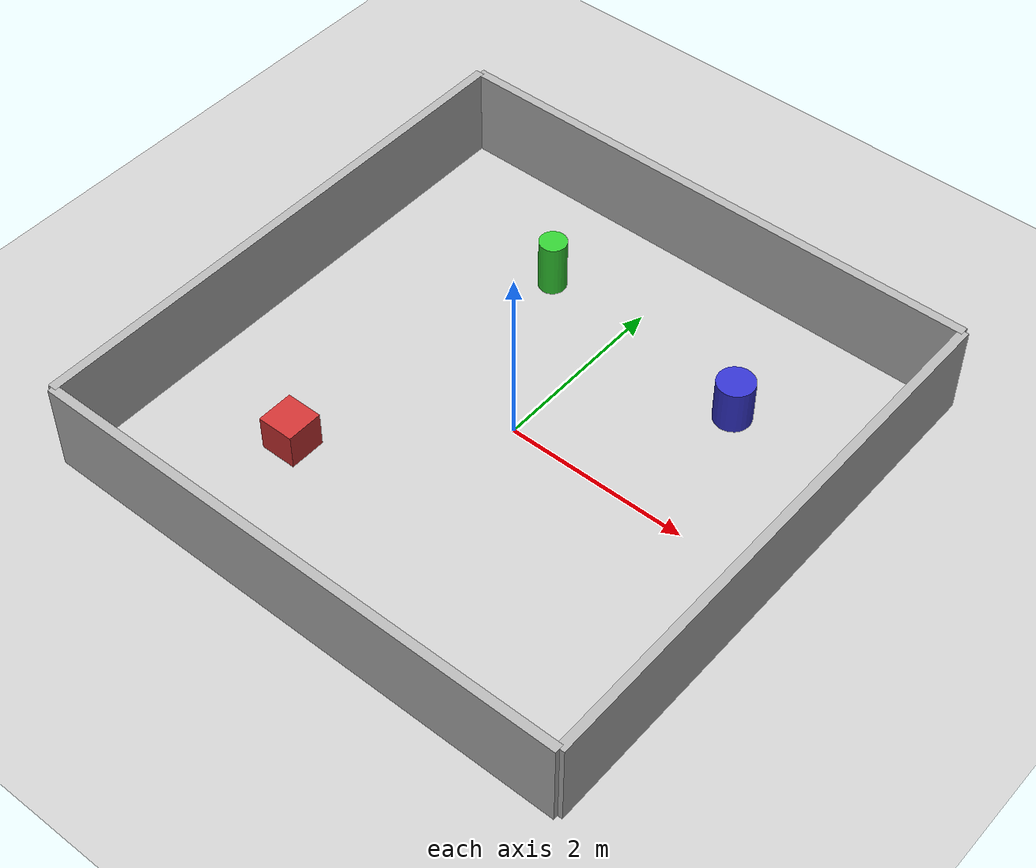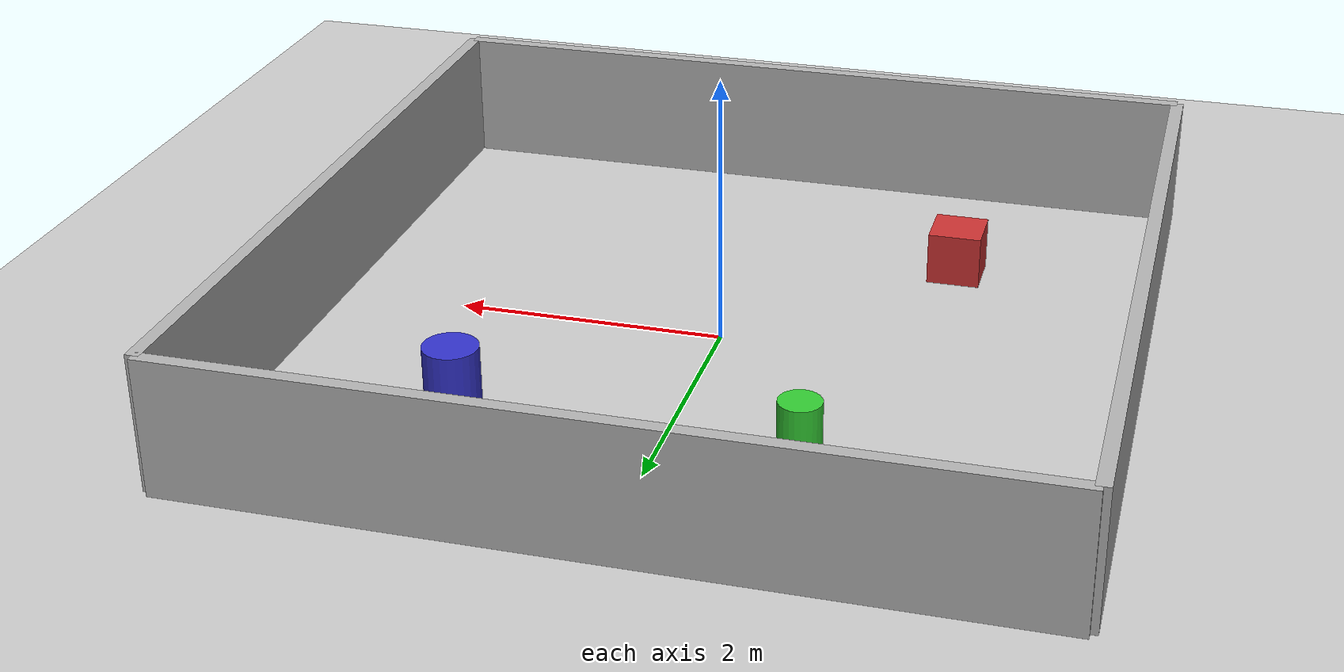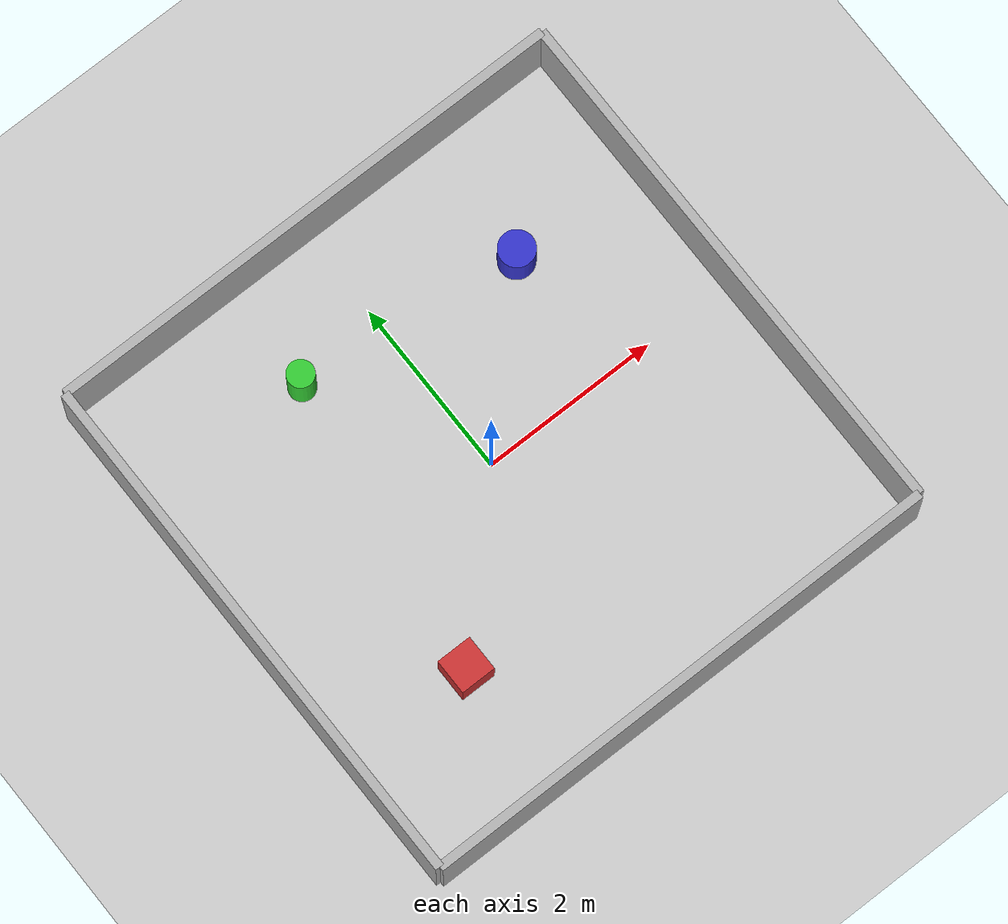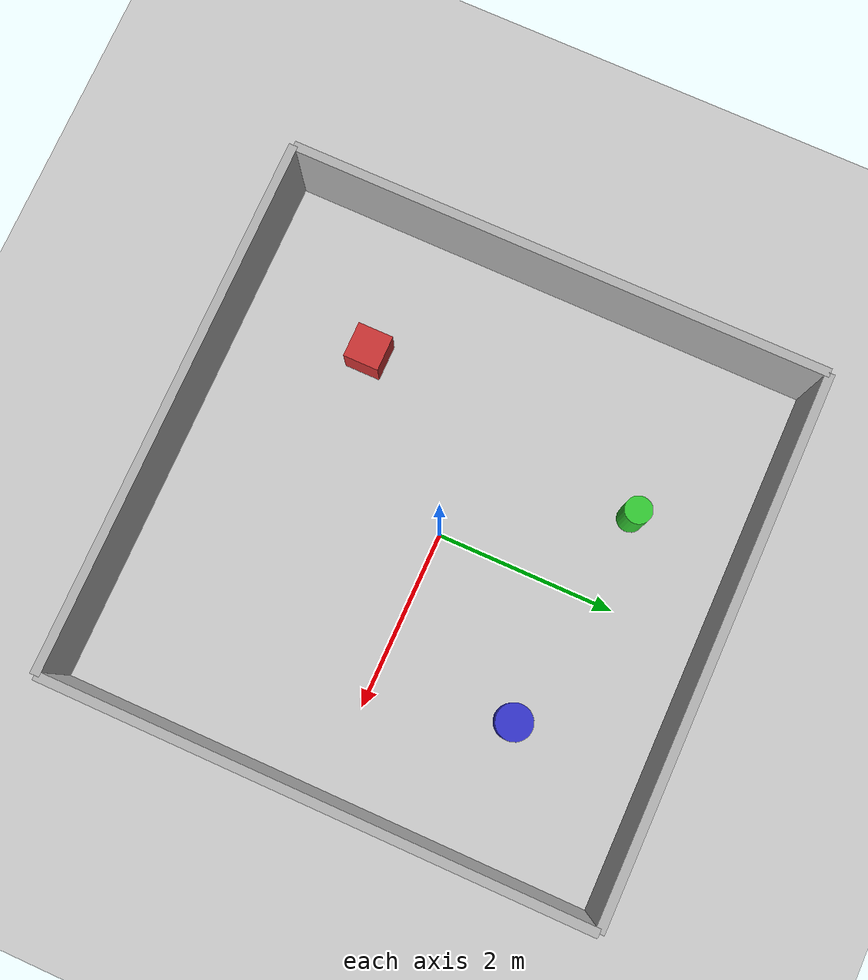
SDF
<?xml version="1.0" ?>
<sdf version="1.8">
  <world name="simple_room">

    <!-- 物理引擎设置 -->
    <physics name="1ms" type="ignored">
      <max_step_size>0.001</max_step_size>
      <real_time_factor>1.0</real_time_factor>
    </physics>

    <!-- 插件：启用场景广播 -->
    <plugin filename="gz-sim-physics-system" name="gz::sim::systems::Physics">
    </plugin>
    <plugin filename="gz-sim-user-commands-system" name="gz::sim::systems::UserCommands">
    </plugin>
    <plugin filename="gz-sim-scene-broadcaster-system" name="gz::sim::systems::SceneBroadcaster">
    </plugin>
    <plugin filename="gz-sim-sensors-system" name="gz::sim::systems::Sensors">
      <render_engine>ogre2</render_engine>
    </plugin>
    <plugin filename="gz-sim-imu-system" name="gz::sim::systems::Imu">
    </plugin>

    <!-- 光照 -->
    <light type="directional" name="sun">
      <cast_shadows>true</cast_shadows>
      <pose>0 0 10 0 0 0</pose>
      <diffuse>0.8 0.8 0.8 1</diffuse>
      <specular>0.2 0.2 0.2 1</specular>
      <attenuation>
        <range>1000</range>
        <constant>0.9</constant>
        <linear>0.01</linear>
        <quadratic>0.001</quadratic>
      </attenuation>
      <direction>-0.5 0.1 -0.9</direction>
    </light>

    <!-- 地面 -->
    <model name="ground_plane">
      <static>true</static>
      <link name="link">
        <collision name="collision">
          <geometry>
            <plane>
              <normal>0 0 1</normal>
              <size>100 100</size>
            </plane>
          </geometry>
        </collision>
        <visual name="visual">
          <geometry>
            <plane>
              <normal>0 0 1</normal>
              <size>100 100</size>
            </plane>
          </geometry>
          <material>
            <ambient>0.8 0.8 0.8 1</ambient>
            <diffuse>0.8 0.8 0.8 1</diffuse>
            <specular>0.8 0.8 0.8 1</specular>
          </material>
        </visual>
      </link>
    </model>

    <!-- 房间墙壁 -->

    <!-- 前墙 -->
    <model name="wall_front">
      <static>true</static>
      <pose>0 3 0.5 0 0 0</pose>
      <link name="link">
        <collision name="collision">
          <geometry>
            <box>
              <size>6 0.1 1</size>
            </box>
          </geometry>
        </collision>
        <visual name="visual">
          <geometry>
            <box>
              <size>6 0.1 1</size>
            </box>
          </geometry>
          <material>
            <ambient>0.7 0.7 0.7 1</ambient>
            <diffuse>0.7 0.7 0.7 1</diffuse>
          </material>
        </visual>
      </link>
    </model>

    <!-- 后墙 -->
    <model name="wall_back">
      <static>true</static>
      <pose>0 -3 0.5 0 0 0</pose>
      <link name="link">
        <collision name="collision">
          <geometry>
            <box>
              <size>6 0.1 1</size>
            </box>
          </geometry>
        </collision>
        <visual name="visual">
          <geometry>
            <box>
              <size>6 0.1 1</size>
            </box>
          </geometry>
          <material>
            <ambient>0.7 0.7 0.7 1</ambient>
            <diffuse>0.7 0.7 0.7 1</diffuse>
          </material>
        </visual>
      </link>
    </model>

    <!-- 左墙 -->
    <model name="wall_left">
      <static>true</static>
      <pose>-3 0 0.5 0 0 0</pose>
      <link name="link">
        <collision name="collision">
          <geometry>
            <box>
              <size>0.1 6 1</size>
            </box>
          </geometry>
        </collision>
        <visual name="visual">
          <geometry>
            <box>
              <size>0.1 6 1</size>
            </box>
          </geometry>
          <material>
            <ambient>0.7 0.7 0.7 1</ambient>
            <diffuse>0.7 0.7 0.7 1</diffuse>
          </material>
        </visual>
      </link>
    </model>

    <!-- 右墙 -->
    <model name="wall_right">
      <static>true</static>
      <pose>3 0 0.5 0 0 0</pose>
      <link name="link">
        <collision name="collision">
          <geometry>
            <box>
              <size>0.1 6 1</size>
            </box>
          </geometry>
        </collision>
        <visual name="visual">
          <geometry>
            <box>
              <size>0.1 6 1</size>
            </box>
          </geometry>
          <material>
            <ambient>0.7 0.7 0.7 1</ambient>
            <diffuse>0.7 0.7 0.7 1</diffuse>
          </material>
        </visual>
      </link>
    </model>

    <!-- 障碍物 -->

    <!-- 圆柱障碍物1 -->
    <model name="obstacle_cylinder1">
      <static>true</static>
      <pose>1.5 1.5 0.25 0 0 0</pose>
      <link name="link">
        <collision name="collision">
          <geometry>
            <cylinder>
              <radius>0.2</radius>
              <length>0.5</length>
            </cylinder>
          </geometry>
        </collision>
        <visual name="visual">
          <geometry>
            <cylinder>
              <radius>0.2</radius>
              <length>0.5</length>
            </cylinder>
          </geometry>
          <material>
            <ambient>0.2 0.2 0.8 1</ambient>
            <diffuse>0.2 0.2 0.8 1</diffuse>
          </material>
        </visual>
      </link>
    </model>

    <!-- 盒子障碍物 -->
    <model name="obstacle_box1">
      <static>true</static>
      <pose>-1.5 -1.5 0.2 0 0 0</pose>
      <link name="link">
        <collision name="collision">
          <geometry>
            <box>
              <size>0.4 0.4 0.4</size>
            </box>
          </geometry>
        </collision>
        <visual name="visual">
          <geometry>
            <box>
              <size>0.4 0.4 0.4</size>
            </box>
          </geometry>
          <material>
            <ambient>0.8 0.2 0.2 1</ambient>
            <diffuse>0.8 0.2 0.2 1</diffuse>
          </material>
        </visual>
      </link>
    </model>

    <!-- 圆柱障碍物2 -->
    <model name="obstacle_cylinder2">
      <static>true</static>
      <pose>-1.0 1.8 0.3 0 0 0</pose>
      <link name="link">
        <collision name="collision">
          <geometry>
            <cylinder>
              <radius>0.15</radius>
              <length>0.6</length>
            </cylinder>
          </geometry>
        </collision>
        <visual name="visual">
          <geometry>
            <cylinder>
              <radius>0.15</radius>
              <length>0.6</length>
            </cylinder>
          </geometry>
          <material>
            <ambient>0.2 0.8 0.2 1</ambient>
            <diffuse>0.2 0.8 0.2 1</diffuse>
          </material>
        </visual>
      </link>
    </model>

  </world>
</sdf>
